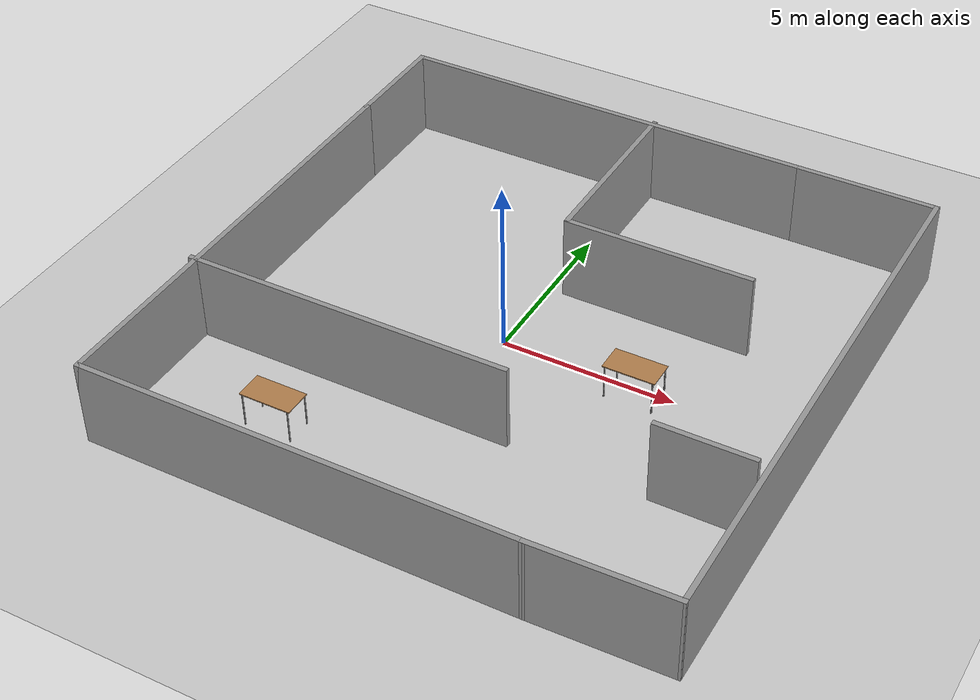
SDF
<sdf version="1.7">
 <world name="default">
  <light name="sun" type="directional">
   <pose>0 0 10 0 -0 0</pose>
   <diffuse>0.8 0.8 0.8 1</diffuse>
   <specular>0.2 0.2 0.2 1</specular>
   <attenuation>
    <range>1000</range>
    <constant>0.9</constant>
    <linear>0.01</linear>
    <quadratic>0.001</quadratic>
   </attenuation>
   <direction>-0.5 0.1 -0.9</direction>
   <spot><inner_angle>0</inner_angle><outer_angle>0</outer_angle><falloff>0</falloff></spot>
  </light>
  <model name="ground_plane">
   <static>1</static>
   <link name="link">
    <collision name="collision">
     <geometry><plane><normal>0 0 1</normal><size>100 100</size></plane></geometry>
     <surface>
      <contact><collide_bitmask>65535</collide_bitmask></contact>
      <friction><ode><mu>100</mu><mu2>50</mu2></ode></friction>
     </surface>
    </collision>
    <visual name="visual">
     <cast_shadows>0</cast_shadows>
     <geometry><plane><normal>0 0 1</normal><size>100 100</size></plane></geometry>
     <material>
      <script><uri>file://media/materials/scripts/gazebo.material</uri><name>Gazebo/Grey</name></script>
     </material>
    </visual>
   </link>
  </model>
  <gravity>0 0 -9.8</gravity>
  <magnetic_field>6e-06 2.3e-05 -4.2e-05</magnetic_field>
  <atmosphere type="adiabatic"/>
  <physics type="ode">
   <max_step_size>0.001</max_step_size>
   <real_time_factor>1</real_time_factor>
   <real_time_update_rate>1000</real_time_update_rate>
  </physics>
  <scene><ambient>0.4 0.4 0.4 1</ambient><background>0.7 0.7 0.7 1</background><shadows>1</shadows></scene>
  <audio><device>default</device></audio>
  <spherical_coordinates>
   <surface_model>EARTH_WGS84</surface_model>
   <latitude_deg>0</latitude_deg>
   <longitude_deg>0</longitude_deg>
   <elevation>0</elevation>
   <heading_deg>0</heading_deg>
  </spherical_coordinates>
  <model name="show_room">
   <pose>0.78556 -0.09981 0 0 -0 0</pose>
   <link name="Wall_10">
    <collision name="Wall_10_Collision">
     <geometry><box><size>13.25 0.15 2.5</size></box></geometry>
     <pose>0 0 1.25 0 -0 0</pose>
    </collision>
    <visual name="Wall_10_Visual">
     <pose>0 0 1.25 0 -0 0</pose>
     <geometry><box><size>13.25 0.15 2.5</size></box></geometry>
     <material>
      <script><uri>file://media/materials/scripts/gazebo.material</uri><name>Gazebo/Grey</name></script>
      <ambient>1 1 1 1</ambient>
     </material>
     <meta><layer>0</layer></meta>
    </visual>
    <pose>-8.0302 -1.59107 0 0 -0 -1.5708</pose>
   </link>
   <link name="Wall_11">
    <collision name="Wall_11_Collision">
     <geometry><box><size>12.5 0.15 2.5</size></box></geometry>
     <pose>0 0 1.25 0 -0 0</pose>
    </collision>
    <visual name="Wall_11_Visual">
     <pose>0 0 1.25 0 -0 0</pose>
     <geometry><box><size>12.5 0.15 2.5</size></box></geometry>
     <material>
      <script><uri>file://media/materials/scripts/gazebo.material</uri><name>Gazebo/Grey</name></script>
      <ambient>1 1 1 1</ambient>
     </material>
     <meta><layer>0</layer></meta>
    </visual>
    <pose>-1.8552 -8.14107 0 0 -0 0</pose>
   </link>
   <link name="Wall_15">
    <collision name="Wall_15_Collision">
     <geometry><box><size>3.25 0.15 2.5</size></box></geometry>
     <pose>0 0 1.25 0 -0 0</pose>
    </collision>
    <visual name="Wall_15_Visual">
     <pose>0 0 1.25 0 -0 0</pose>
     <geometry><box><size>3.25 0.15 2.5</size></box></geometry>
     <material>
      <script><uri>file://media/materials/scripts/gazebo.material</uri><name>Gazebo/Grey</name></script>
      <ambient>1 1 1 1</ambient>
     </material>
     <meta><layer>0</layer></meta>
    </visual>
    <pose>-8.0302 6.50893 0 0 -0 1.5708</pose>
   </link>
   <link name="Wall_16">
    <collision name="Wall_16_Collision">
     <geometry><box><size>12.25 0.15 2.5</size></box></geometry>
     <pose>0 0 1.25 0 -0 0</pose>
    </collision>
    <visual name="Wall_16_Visual">
     <pose>0 0 1.25 0 -0 0</pose>
     <geometry><box><size>12.25 0.15 2.5</size></box></geometry>
     <material>
      <script><uri>file://media/materials/scripts/gazebo.material</uri><name>Gazebo/Grey</name></script>
      <ambient>1 1 1 1</ambient>
     </material>
     <meta><layer>0</layer></meta>
    </visual>
    <pose>-1.9802 8.05893 0 0 -0 0</pose>
   </link>
   <link name="Wall_20">
    <collision name="Wall_20_Collision">
     <geometry><box><size>4.25 0.15 2.5</size></box></geometry>
     <pose>0 0 1.25 0 -0 0</pose>
    </collision>
    <visual name="Wall_20_Visual">
     <pose>0 0 1.25 0 -0 0</pose>
     <geometry><box><size>4.25 0.15 2.5</size></box></geometry>
     <material>
      <script><uri>file://media/materials/scripts/gazebo.material</uri><name>Gazebo/Grey</name></script>
      <ambient>1 1 1 1</ambient>
     </material>
     <meta><layer>0</layer></meta>
    </visual>
    <pose>6.1198 8.05893 0 0 -0 0</pose>
   </link>
   <link name="Wall_21">
    <collision name="Wall_21_Collision">
     <geometry><box><size>16.25 0.15 2.5</size></box></geometry>
     <pose>0 0 1.25 0 -0 0</pose>
    </collision>
    <visual name="Wall_21_Visual">
     <pose>0 0 1.25 0 -0 0</pose>
     <geometry><box><size>16.25 0.15 2.5</size></box></geometry>
     <material>
      <script><uri>file://media/materials/scripts/gazebo.material</uri><name>Gazebo/Grey</name></script>
      <ambient>1 1 1 1</ambient>
     </material>
     <meta><layer>0</layer></meta>
    </visual>
    <pose>8.1698 0.008927 0 0 -0 -1.5708</pose>
   </link>
   <link name="Wall_22">
    <collision name="Wall_22_Collision">
     <geometry><box><size>4.0013 0.15 2.5</size></box></geometry>
     <pose>0 0 1.25 0 -0 0</pose>
    </collision>
    <visual name="Wall_22_Visual">
     <pose>0 0 1.25 0 -0 0</pose>
     <geometry><box><size>4.0013 0.15 2.5</size></box></geometry>
     <material>
      <script><uri>file://media/materials/scripts/gazebo.material</uri><name>Gazebo/Grey</name></script>
      <ambient>1 1 1 1</ambient>
     </material>
     <meta><layer>0</layer></meta>
    </visual>
    <pose>6.2448 -8.09107 0 0 -0 -3.11562</pose>
   </link>
   <link name="Wall_25">
    <collision name="Wall_25_Collision">
     <geometry><box><size>5.5 0.15 2.5</size></box></geometry>
     <pose>0 0 1.25 0 -0 0</pose>
    </collision>
    <visual name="Wall_25_Visual">
     <pose>0 0 1.25 0 -0 0</pose>
     <geometry><box><size>5.5 0.15 2.5</size></box></geometry>
     <material>
      <script><uri>file://media/materials/scripts/gazebo.material</uri><name>Gazebo/Grey</name></script>
      <ambient>1 1 1 1</ambient>
     </material>
     <meta><layer>0</layer></meta>
    </visual>
    <pose>-0.317685 5.468 0 0 -0 -1.5708</pose>
   </link>
   <link name="Wall_26">
    <collision name="Wall_26_Collision">
     <geometry><box><size>5.5 0.15 2.5</size></box></geometry>
     <pose>0 0 1.25 0 -0 0</pose>
    </collision>
    <visual name="Wall_26_Visual">
     <pose>0 0 1.25 0 -0 0</pose>
     <geometry><box><size>5.5 0.15 2.5</size></box></geometry>
     <material>
      <script><uri>file://media/materials/scripts/gazebo.material</uri><name>Gazebo/Grey</name></script>
      <ambient>1 1 1 1</ambient>
     </material>
     <meta><layer>0</layer></meta>
    </visual>
    <pose>2.35731 2.79299 0 0 -0 0</pose>
   </link>
   <link name="Wall_28">
    <collision name="Wall_28_Collision">
     <geometry><box><size>9.5 0.15 2.5</size></box></geometry>
     <pose>0 0 1.25 0 -0 0</pose>
    </collision>
    <visual name="Wall_28_Visual">
     <pose>0 0 1.25 0 -0 0</pose>
     <geometry><box><size>9.5 0.15 2.5</size></box></geometry>
     <material>
      <script><uri>file://media/materials/scripts/gazebo.material</uri><name>Gazebo/Grey</name></script>
      <ambient>1 1 1 1</ambient>
     </material>
     <meta><layer>0</layer></meta>
    </visual>
    <pose>-3.49672 -3.31965 0 0 -0 0</pose>
   </link>
   <link name="Wall_30">
    <collision name="Wall_30_Collision">
     <geometry><box><size>2.75 0.15 2.5</size></box></geometry>
     <pose>0 0 1.25 0 -0 0</pose>
    </collision>
    <visual name="Wall_30_Visual">
     <pose>0 0 1.25 0 -0 0</pose>
     <geometry><box><size>2.75 0.15 2.5</size></box></geometry>
     <material>
      <script><uri>file://media/materials/scripts/gazebo.material</uri><name>Gazebo/Grey</name></script>
      <ambient>1 1 1 1</ambient>
     </material>
     <meta><layer>0</layer></meta>
    </visual>
    <pose>6.50136 -3.31965 0 0 -0 0</pose>
   </link>
   <static>1</static>
  </model>
  <model name="table_0">
   <static>1</static>
   <link name="link">
    <collision name="surface">
     <pose>0 0 1 0 -0 0</pose>
     <geometry><box><size>1.5 0.8 0.03</size></box></geometry>
     <surface><friction><ode><mu>0.6</mu><mu2>0.6</mu2></ode></friction></surface>
    </collision>
    <visual name="visual1">
     <pose>0 0 1 0 -0 0</pose>
     <geometry><box><size>1.5 0.8 0.03</size></box></geometry>
     <material>
      <script><uri>file://media/materials/scripts/gazebo.material</uri><name>Gazebo/Wood</name></script>
     </material>
    </visual>
    <collision name="front_left_leg">
     <pose>0.68 0.38 0.5 0 -0 0</pose>
     <geometry><cylinder><radius>0.02</radius><length>1</length></cylinder></geometry>
    </collision>
    <visual name="front_left_leg">
     <pose>0.68 0.38 0.5 0 -0 0</pose>
     <geometry><cylinder><radius>0.02</radius><length>1</length></cylinder></geometry>
     <material>
      <script><uri>file://media/materials/scripts/gazebo.material</uri><name>Gazebo/Grey</name></script>
     </material>
    </visual>
    <collision name="front_right_leg">
     <pose>0.68 -0.38 0.5 0 -0 0</pose>
     <geometry><cylinder><radius>0.02</radius><length>1</length></cylinder></geometry>
    </collision>
    <visual name="front_right_leg">
     <pose>0.68 -0.38 0.5 0 -0 0</pose>
     <geometry><cylinder><radius>0.02</radius><length>1</length></cylinder></geometry>
     <material>
      <script><uri>file://media/materials/scripts/gazebo.material</uri><name>Gazebo/Grey</name></script>
     </material>
    </visual>
    <collision name="back_right_leg">
     <pose>-0.68 -0.38 0.5 0 -0 0</pose>
     <geometry><cylinder><radius>0.02</radius><length>1</length></cylinder></geometry>
    </collision>
    <visual name="back_right_leg">
     <pose>-0.68 -0.38 0.5 0 -0 0</pose>
     <geometry><cylinder><radius>0.02</radius><length>1</length></cylinder></geometry>
     <material>
      <script><uri>file://media/materials/scripts/gazebo.material</uri><name>Gazebo/Grey</name></script>
     </material>
    </visual>
    <collision name="back_left_leg">
     <pose>-0.68 0.38 0.5 0 -0 0</pose>
     <geometry><cylinder><radius>0.02</radius><length>1</length></cylinder></geometry>
    </collision>
    <visual name="back_left_leg">
     <pose>-0.68 0.38 0.5 0 -0 0</pose>
     <geometry><cylinder><radius>0.02</radius><length>1</length></cylinder></geometry>
     <material>
      <script><uri>file://media/materials/scripts/gazebo.material</uri><name>Gazebo/Grey</name></script>
     </material>
    </visual>
   </link>
   <pose>-3.52213 -5.53845 0 0 -0 0</pose>
  </model>
  <model name="table_1">
   <static>1</static>
   <link name="link">
    <collision name="surface">
     <pose>0 0 1 0 -0 0</pose>
     <geometry><box><size>1.5 0.8 0.03</size></box></geometry>
     <surface><friction><ode><mu>0.6</mu><mu2>0.6</mu2></ode></friction></surface>
    </collision>
    <visual name="visual1">
     <pose>0 0 1 0 -0 0</pose>
     <geometry><box><size>1.5 0.8 0.03</size></box></geometry>
     <material>
      <script><uri>file://media/materials/scripts/gazebo.material</uri><name>Gazebo/Wood</name></script>
     </material>
    </visual>
    <collision name="front_left_leg">
     <pose>0.68 0.38 0.5 0 -0 0</pose>
     <geometry><cylinder><radius>0.02</radius><length>1</length></cylinder></geometry>
    </collision>
    <visual name="front_left_leg">
     <pose>0.68 0.38 0.5 0 -0 0</pose>
     <geometry><cylinder><radius>0.02</radius><length>1</length></cylinder></geometry>
     <material>
      <script><uri>file://media/materials/scripts/gazebo.material</uri><name>Gazebo/Grey</name></script>
     </material>
    </visual>
    <collision name="front_right_leg">
     <pose>0.68 -0.38 0.5 0 -0 0</pose>
     <geometry><cylinder><radius>0.02</radius><length>1</length></cylinder></geometry>
    </collision>
    <visual name="front_right_leg">
     <pose>0.68 -0.38 0.5 0 -0 0</pose>
     <geometry><cylinder><radius>0.02</radius><length>1</length></cylinder></geometry>
     <material>
      <script><uri>file://media/materials/scripts/gazebo.material</uri><name>Gazebo/Grey</name></script>
     </material>
    </visual>
    <collision name="back_right_leg">
     <pose>-0.68 -0.38 0.5 0 -0 0</pose>
     <geometry><cylinder><radius>0.02</radius><length>1</length></cylinder></geometry>
    </collision>
    <visual name="back_right_leg">
     <pose>-0.68 -0.38 0.5 0 -0 0</pose>
     <geometry><cylinder><radius>0.02</radius><length>1</length></cylinder></geometry>
     <material>
      <script><uri>file://media/materials/scripts/gazebo.material</uri><name>Gazebo/Grey</name></script>
     </material>
    </visual>
    <collision name="back_left_leg">
     <pose>-0.68 0.38 0.5 0 -0 0</pose>
     <geometry><cylinder><radius>0.02</radius><length>1</length></cylinder></geometry>
    </collision>
    <visual name="back_left_leg">
     <pose>-0.68 0.38 0.5 0 -0 0</pose>
     <geometry><cylinder><radius>0.02</radius><length>1</length></cylinder></geometry>
     <material>
      <script><uri>file://media/materials/scripts/gazebo.material</uri><name>Gazebo/Grey</name></script>
     </material>
    </visual>
   </link>
   <pose>3.97743 -0.244327 0 0 -0 0</pose>
  </model>
 </world>
</sdf>
